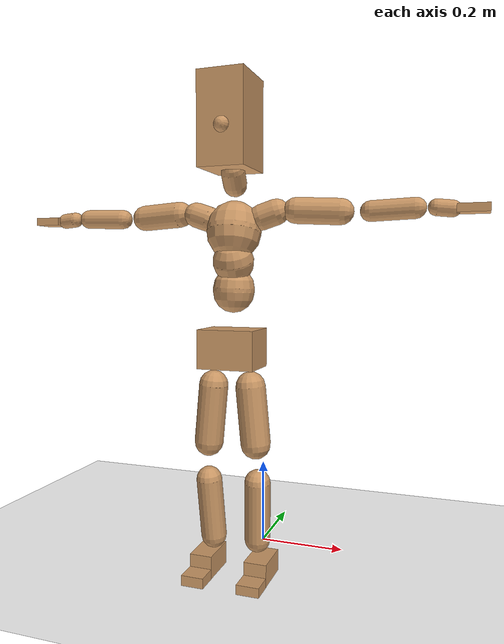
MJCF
<mujoco model="humanoid">
  <option integrator="implicitfast" />

  <visual>
    <global offwidth="1280" offheight="960" />
    <headlight active="1" ambient="0.34 0.34 0.34" diffuse="0.5 0.5 0.5" />
  </visual>

  <default>
    <joint damping="2" stiffness="2" armature="0.01" limited="true" solimplimit="0 .99 .01" />
    <geom condim="1" friction="0.7 0.005 0.0001" solimp=".99 .99 .003" solref="0.015 1" margin="0.001" rgba="0.8 0.6 .4 1" />
    <default class="smplcontact">
      <geom condim="3" friction="1. 0.005 0.0001" solref="0.015 1" solimp="0.98 0.98 0.001" priority="1" />
    </default>
    <default class="stiff_medium">
      <joint stiffness="10" />
    </default>
    <default class="stiff_medium_higher">
      <joint stiffness="50" />
    </default>
    <default class="stiff_high">
      <joint stiffness="100" />
    </default>
  </default>

  <asset>
    <texture type="skybox" builtin="gradient" rgb1="0.99 0.99 0.99" rgb2="0.608 0.828 0.892" width="100" />
    <texture builtin="flat" height="1278" mark="cross" markrgb="1 1 1" name="texgeom" random="0.01" rgb1="0.8 0.6 0.4" rgb2="0.8 0.6 0.4" type="cube" width="127" />
    <texture name="texplane" type="2d" builtin="checker" markrgb="1 1 1" rgb1="0.756 0.772 0.76" rgb2="0.6 0.6 0.6" width="100" height="100" />
    <material name="MatPlane" reflectance="0.5" texture="texplane" texrepeat="1 1" texuniform="true" />
    <material name="geom" texture="texgeom" texuniform="true" />
  </asset>

  <worldbody>
    <light name="tracking_light" pos="0 0 7" dir="0 0 -1" directional="true" cutoff="100" exponent="1" diffuse="1 1 1" specular="0.1 0.1 0.1" mode="trackcom" />
    <camera name="back" pos="0 3 2.4" xyaxes="-1 0 0 0 -1 2" mode="trackcom" />
    <camera name="side" pos="-3 0 2.4" xyaxes="0 -1 0 1 0 2" mode="trackcom" />
    <camera name="front_side" pos="-2.8 -2.8 0.8" xyaxes="0.5 -0.5 0 0.1 0.1 1" mode="trackcom" />
    <geom condim="3" name="floor" pos="0 0 0" rgba="1 1 1 1" size="100 100 .2" type="plane" material="MatPlane" />
    <body name="Pelvis" pos="-0.0018 -0.2233 0.522105" euler="90 0 0">
      <site name="Pelvis" size="0.01" />
      <freejoint name="Pelvis" />
      <geom type="box" pos="-0.0000 -0.0121 -0.0055" size="0.0622645 0.0420533 0.0483438" quat="1.0000 0.0000 0.0000 0.0000" density="3165.830099" name="Pelvis" />
      <body name="L_Hip" pos="0.0387885 -0.051011 -0.00379513">
        <joint name="L_Hip_x" type="hinge" pos="0 0 0" axis="1 0 0" stiffness="10" range="-160.0 22.92" class="stiff_medium" damping="15" />
        <joint name="L_Hip_y" type="hinge" pos="0 0 0" axis="0 1 0" stiffness="10" range="-70.0 70.0" class="stiff_medium" damping="10" />
        <joint name="L_Hip_z" type="hinge" pos="0 0 0" axis="0 0 1" stiffness="10" range="-28.65 90.0" class="stiff_medium" damping="10" />
        <geom type="capsule" density="2040.816327" fromto="0.00385094 -0.0418581 -0.000502297 0.0152921 -0.167544 -0.00200919" size="0.0324031" name="L_Hip" />
        <body name="L_Knee" pos="0.0191431 -0.209402 -0.00251148">
          <joint name="L_Knee_x" type="hinge" pos="0 0 0" axis="1 0 0" range="-5.16 171.89" damping="8" />
          <joint name="L_Knee_y" type="hinge" pos="0 0 0" axis="0 1 0" range="-4.58 6.88" damping="8" />
          <joint name="L_Knee_z" type="hinge" pos="0 0 0" axis="0 0 1" range="-6.88 4.58" damping="8" />
          <geom type="capsule" density="1234.567901" fromto="-0.00150689 -0.0444254 -0.00485554 -0.00608337 -0.177701 -0.0195338" size="0.0285042" name="L_Knee" />
          <body name="L_Ankle" pos="-0.00759026 -0.222127 -0.0243893">
            <joint name="L_Ankle_x" type="hinge" pos="0 0 0" axis="1 0 0" range="-45.84 45.84" class="stiff_medium" damping="6" />
            <joint name="L_Ankle_y" type="hinge" pos="0 0 0" axis="0 1 0" range="-74.48 22.92" class="stiff_medium" damping="3" />
            <joint name="L_Ankle_z" type="hinge" pos="0 0 0" axis="0 0 1" range="-4.58 4.58" class="stiff_medium" damping="6" />
            <geom type="box" pos="0.0130039 -0.0133388 0.0135062" size="0.0254483 0.0244472 0.0447848" quat="1.0000 0.0000 0.0000 0.0000" density="449.071558" name="L_Ankle" class="smplcontact" />
            <body name="L_Toe" pos="0.014734 -0.0311424 0.0665822">
              <joint name="L_Toe_x" type="hinge" pos="0 0 0" axis="1 0 0" range="-91.67 22.92" />
              <joint name="L_Toe_y" type="hinge" pos="0 0 0" axis="0 1 0" range="-4.58 4.58" />
              <joint name="L_Toe_z" type="hinge" pos="0 0 0" axis="0 0 1" range="-4.58 4.58" />
              <geom type="box" pos="-0.00167432 0.00306959 0.0138411" size="0.0251849 0.0105376 0.0261333" quat="1.0000 0.0000 0.0000 0.0000" density="423.206892" name="L_Toe" class="smplcontact" />
            </body>
          </body>
        </body>
      </body>
      <body name="R_Hip" pos="-0.0377839 -0.0505087 -0.00239986">
        <joint name="R_Hip_x" type="hinge" pos="0 0 0" axis="1 0 0" stiffness="10" range="-160.0 22.92" class="stiff_medium" damping="15" />
        <joint name="R_Hip_y" type="hinge" pos="0 0 0" axis="0 1 0" stiffness="10" range="-70.0 70.0" class="stiff_medium" damping="10" />
        <joint name="R_Hip_z" type="hinge" pos="0 0 0" axis="0 0 1" stiffness="10" range="-90.0 28.65" class="stiff_medium" damping="10" />
        <geom type="capsule" density="2040.816327" fromto="-0.00429743 -0.0426952 -0.00100459 -0.0170781 -0.170837 -0.00396256" size="0.0319289" name="R_Hip" />
        <body name="R_Knee" pos="-0.0213755 -0.213532 -0.00496716">
          <joint name="R_Knee_x" type="hinge" pos="0 0 0" axis="1 0 0" range="-5.16 171.89" damping="8" />
          <joint name="R_Knee_y" type="hinge" pos="0 0 0" axis="0 1 0" range="-6.88 4.58" damping="8" />
          <joint name="R_Knee_z" type="hinge" pos="0 0 0" axis="0 0 1" range="-4.58 6.88" damping="8" />
          <geom type="capsule" density="1234.567901" fromto="0.00178594 -0.0444812 -0.00474391 0.00703215 -0.177869 -0.018864" size="0.0285042" name="R_Knee" />
          <body name="R_Ankle" pos="0.0088181 -0.22235 -0.0236079">
            <joint name="R_Ankle_x" type="hinge" pos="0 0 0" axis="1 0 0" range="-45.84 45.84" class="stiff_medium" damping="6" />
            <joint name="R_Ankle_y" type="hinge" pos="0 0 0" axis="0 1 0" range="-22.92 74.48" class="stiff_medium" damping="3" />
            <joint name="R_Ankle_z" type="hinge" pos="0 0 0" axis="0 0 1" range="-4.58 4.58" class="stiff_medium" damping="6" />
            <geom type="box" pos="-0.0118319 -0.00971107 0.0142876" size="0.0254483 0.0251849 0.0455751" quat="1.0000 0.0000 0.0000 0.0000" density="434.700981" name="R_Ankle" class="smplcontact" />
            <body name="R_Toe" pos="-0.0141759 -0.026845 0.0688147">
              <joint name="R_Toe_x" type="hinge" pos="0 0 0" axis="1 0 0" range="-91.67 22.92" />
              <joint name="R_Toe_y" type="hinge" pos="0 0 0" axis="0 1 0" range="-4.58 4.58" />
              <joint name="R_Toe_z" type="hinge" pos="0 0 0" axis="0 0 1" range="-4.58 4.58" />
              <geom type="box" pos="0.00234405 0.00251148 0.012669" size="0.0252376 0.0113806 0.0259752" quat="1.0000 0.0000 0.0000 0.0000" density="407.384095" name="R_Toe" class="smplcontact" />
            </body>
          </body>
        </body>
      </body>
      <body name="Torso" pos="-0.00160274 0.0698797 -0.0171173">
        <joint name="Torso_x" type="hinge" pos="0 0 0" axis="1 0 0" range="-25.78 57.3" class="stiff_medium" damping="15" />
        <joint name="Torso_y" type="hinge" pos="0 0 0" axis="0 1 0" range="-57.3 57.3" class="stiff_high" damping="20" />
        <joint name="Torso_z" type="hinge" pos="0 0 0" axis="0 0 1" range="-34.38 34.38" class="stiff_high" damping="20" />
        <geom type="capsule" density="2040.816327" fromto="0.00160274 0.0389787 0.000320549 0.00192329 0.0476336 0.000384659" size="0.0447909" name="Torso" />
        <body name="Spine" pos="0.00352604 0.0866764 0.000705208">
          <joint name="Spine_x" type="hinge" pos="0 0 0" axis="1 0 0" stiffness="10" range="-25.78 57.3" class="stiff_medium" damping="15" />
          <joint name="Spine_y" type="hinge" pos="0 0 0" axis="0 1 0" stiffness="10" range="-57.3 57.3" class="stiff_high" damping="8" />
          <joint name="Spine_z" type="hinge" pos="0 0 0" axis="0 0 1" stiffness="20" range="-34.38 34.38" class="stiff_high" damping="12" />
          <geom type="capsule" density="2040.816327" fromto="0.000448768 0.0152581 0.00730851 0.000512878 0.0186559 0.00897537" size="0.0439754" name="Spine" />
          <body name="Chest" pos="0.000961647 0.0339141 0.0162839">
            <joint name="Chest_x" type="hinge" pos="0 0 0" axis="1 0 0" stiffness="10" range="-25.78 57.3" class="stiff_medium" damping="15" />
            <joint name="Chest_y" type="hinge" pos="0 0 0" axis="0 1 0" stiffness="10" range="-57.3 57.3" class="stiff_high" damping="8" />
            <joint name="Chest_z" type="hinge" pos="0 0 0" axis="0 0 1" stiffness="20" range="-34.38 34.38" class="stiff_high" damping="12" />
            <geom type="capsule" density="2040.816327" fromto="-0.000576988 0.0437229 -0.011091 -0.000641098 0.0534034 -0.0135913" size="0.0583621" name="Chest" />
            <body name="Neck" pos="-0.00179507 0.137131 -0.0275031">
              <joint name="Neck_x" type="hinge" pos="0 0 0" axis="1 0 0" range="-28.65 57.3" class="stiff_medium_higher" damping="10" />
              <joint name="Neck_y" type="hinge" pos="0 0 0" axis="0 1 0" range="-40.11 40.11" class="stiff_medium_higher" damping="10" />
              <joint name="Neck_z" type="hinge" pos="0 0 0" axis="0 0 1" range="-40.11 40.11" class="stiff_medium_higher" damping="10" />
              <geom type="capsule" density="1000" fromto="0.000641098 0.00833427 0.00660331 0.0026285 0.0333371 0.0263491" size="0.0253951" name="Neck" />
              <body name="Head" pos="0.0044675 0.0558437 0.0440736">
                <joint name="Head_x" type="hinge" pos="0 0 0" axis="1 0 0" range="-28.65 57.3" class="stiff_medium_higher" damping="2" />
                <joint name="Head_y" type="hinge" pos="0 0 0" axis="0 1 0" range="-40.11 40.11" class="stiff_medium_higher" damping="2" />
                <joint name="Head_z" type="hinge" pos="0 0 0" axis="0 0 1" range="-40.11 40.11" class="stiff_medium_higher" damping="2" />
                <geom type="box" pos="-0.00360836 0.0752601 -0.00996595" size="0.0504233 0.0960205 0.0632371" quat="1.0000 0.0000 0.0000 0.0000" density="1018.069894" name="Head" />
                <geom type="capsule" name="nose" size="0.0166413 0.00832067" pos="0 0.0601394 0.0429567" quat="1 0 0 0" mass="0" contype="0" conaffinity="0" />
              </body>
            </body>
            <body name="L_Thorax" pos="0.0465755 0.0719319 -0.0201551">
              <joint name="L_Thorax_x" type="hinge" pos="0 0 0" axis="1 0 0" range="-10.89 4.58" class="stiff_medium_higher" damping="20" />
              <joint name="L_Thorax_y" type="hinge" pos="0 0 0" axis="0 1 0" range="-28.65 17.19" class="stiff_medium_higher" damping="20" />
              <joint name="L_Thorax_z" type="hinge" pos="0 0 0" axis="0 0 1" range="-31.51 40.11" class="stiff_medium_higher" damping="20" />
              <geom type="capsule" density="1000" fromto="0.0107573 0.00360546 -0.00106391 0.0430291 0.0144218 -0.00419652" size="0.027622" name="L_Thorax" />
              <body name="L_Shoulder" pos="0.0537864 0.0180273 -0.00526043">
                <joint name="L_Shoulder_x" type="hinge" pos="0 0 0" axis="1 0 0" range="-97.4 97.4" class="stiff_medium" damping="6" />
                <joint name="L_Shoulder_y" type="hinge" pos="0 0 0" axis="0 1 0" range="-108.86 80.21" class="stiff_medium" damping="6" />
                <joint name="L_Shoulder_z" type="hinge" pos="0 0 0" axis="0 0 1" range="-97.4 85.94" class="stiff_medium" damping="6" />
                <geom type="capsule" density="1000" fromto="0.030676 -0.00153675 -0.00325082 0.122763 -0.0060288 -0.0130033" size="0.02741" name="L_Shoulder" />
                <body name="L_Elbow" pos="0.153439 -0.00756556 -0.0162541">
                  <joint name="L_Elbow_x" type="hinge" pos="0 0 0" axis="1 0 0" range="-17.19 4.58" damping="5" />
                  <joint name="L_Elbow_y" type="hinge" pos="0 0 0" axis="0 1 0" range="-180.0 17.19" damping="5" />
                  <joint name="L_Elbow_z" type="hinge" pos="0 0 0" axis="0 0 1" range="-100.84 4.58" damping="5" />
                  <geom type="capsule" density="1000" fromto="0.0294347 0.00106391 -0.000118212 0.117857 0.00425563 -0.000531953" size="0.021472" name="L_Elbow" />
                  <body name="L_Wrist" pos="0.147292 0.00531953 -0.000709271">
                    <joint name="L_Wrist_x" type="hinge" pos="0 0 0" axis="1 0 0" range="-180.0 22.92" />
                    <joint name="L_Wrist_y" type="hinge" pos="0 0 0" axis="0 1 0" range="-17.19 17.19" />
                    <joint name="L_Wrist_z" type="hinge" pos="0 0 0" axis="0 0 1" range="-22.92 22.92" />
                    <geom type="capsule" density="1000" fromto="0.00992979 -0.000945694 -0.00177318 0.0397192 -0.00384188 -0.00709271" size="0.0168595" name="L_Wrist" class="smplcontact" />
                    <body name="L_Hand" pos="0.049649 -0.00484668 -0.00880678">
                      <joint name="L_Hand_x" type="hinge" pos="0 0 0" axis="1 0 0" range="-17.19 17.19" />
                      <joint name="L_Hand_y" type="hinge" pos="0 0 0" axis="0 1 0" range="-51.57 51.57" />
                      <joint name="L_Hand_z" type="hinge" pos="0 0 0" axis="0 0 1" range="-91.67 91.67" />
                      <geom type="box" pos="0.0291392 0.000591059 -0.00342814" size="0.0310151 0.00837674 0.0285233" quat="1.0000 0.0000 0.0000 0.0000" density="400.552564" name="L_Hand" class="smplcontact" />
                    </body>
                  </body>
                </body>
              </body>
            </body>
            <body name="R_Thorax" pos="-0.0483486 0.0702178 -0.0228149">
              <joint name="R_Thorax_x" type="hinge" pos="0 0 0" axis="1 0 0" range="-10.89 4.58" class="stiff_medium_higher" damping="20" />
              <joint name="R_Thorax_y" type="hinge" pos="0 0 0" axis="0 1 0" range="-17.19 28.65" class="stiff_medium_higher" damping="20" />
              <joint name="R_Thorax_z" type="hinge" pos="0 0 0" axis="0 0 1" range="-40.11 31.51" class="stiff_medium_higher" damping="20" />
              <geom type="capsule" density="1000" fromto="-0.0113483 0.00384188 -0.00106391 -0.0453933 0.0153675 -0.00431473" size="0.0270919" name="R_Thorax" />
              <body name="R_Shoulder" pos="-0.0567417 0.0192685 -0.00537864">
                <joint name="R_Shoulder_x" type="hinge" pos="0 0 0" axis="1 0 0" range="-97.4 97.4" class="stiff_medium" damping="6" />
                <joint name="R_Shoulder_y" type="hinge" pos="0 0 0" axis="0 1 0" range="-80.21 108.86" class="stiff_medium" damping="6" />
                <joint name="R_Shoulder_z" type="hinge" pos="0 0 0" axis="0 0 1" range="-85.94 97.4" class="stiff_medium" damping="6" />
                <geom type="capsule" density="1000" fromto="-0.0299667 -0.00159586 -0.00254155 -0.119985 -0.00632433 -0.0101071" size="0.0281522" name="R_Shoulder" />
                <body name="R_Elbow" pos="-0.149952 -0.00786109 -0.0126487">
                  <joint name="R_Elbow_x" type="hinge" pos="0 0 0" axis="1 0 0" range="-17.19 4.58" damping="5" />
                  <joint name="R_Elbow_y" type="hinge" pos="0 0 0" axis="0 1 0" range="-17.19 180.0" damping="5" />
                  <joint name="R_Elbow_z" type="hinge" pos="0 0 0" axis="0 0 1" range="-4.58 100.84" damping="5" />
                  <geom type="capsule" density="1000" fromto="-0.0302031 0.000945694 -0.000650165 -0.120694 0.00366457 -0.00260066" size="0.0216311" name="R_Elbow" />
                  <body name="R_Wrist" pos="-0.150897 0.00461026 -0.00330993">
                    <joint name="R_Wrist_x" type="hinge" pos="0 0 0" axis="1 0 0" range="-180.0 22.92" />
                    <joint name="R_Wrist_y" type="hinge" pos="0 0 0" axis="0 1 0" range="-17.19 17.19" />
                    <joint name="R_Wrist_z" type="hinge" pos="0 0 0" axis="0 0 1" range="-22.92 22.92" />
                    <geom type="capsule" density="1000" fromto="-0.0099889 -0.000709271 -0.00124122 -0.0400147 -0.00289619 -0.00490579" size="0.0172836" name="R_Wrist" class="smplcontact" />
                    <body name="R_Hand" pos="-0.0500036 -0.00360546 -0.00608791">
                      <joint name="R_Hand_x" type="hinge" pos="0 0 0" axis="1 0 0" range="-17.19 17.19" />
                      <joint name="R_Hand_y" type="hinge" pos="0 0 0" axis="0 1 0" range="-51.57 51.57" />
                      <joint name="R_Hand_z" type="hinge" pos="0 0 0" axis="0 0 1" range="-91.67 91.67" />
                      <geom type="box" pos="-0.0273069 -0.000531953 -0.00466937" size="0.0301669 0.00869484 0.0289475" quat="1.0000 0.0000 0.0000 0.0000" density="403.679611" name="R_Hand" class="smplcontact" />
                    </body>
                  </body>
                </body>
              </body>
            </body>
          </body>
        </body>
      </body>
    </body>
  </worldbody>
  <actuator>
    <general name="L_Hip_x" joint="L_Hip_x" biastype="affine" gainprm="287.33006409732246" biasprm="-215.3247604770444 -180 -2.0" ctrllimited="true" ctrlrange="-1 1" forcerange="-360 360" />
    <general name="L_Hip_y" joint="L_Hip_y" biastype="affine" gainprm="219.9114857512855" biasprm="0.0 -180 -2.0" ctrllimited="true" ctrlrange="-1 1" forcerange="-360 360" />
    <general name="L_Hip_z" joint="L_Hip_z" biastype="affine" gainprm="186.3749841742145" biasprm="96.3683546488669 -180 -2.0" ctrllimited="true" ctrlrange="-1 1" forcerange="-360 360" />
    <general name="L_Knee_x" joint="L_Knee_x" biastype="affine" gainprm="278.10948965903646" biasprm="261.8988715665131 -180 -2.0" ctrllimited="true" ctrlrange="-1 1" forcerange="-360 360" />
    <general name="L_Knee_y" joint="L_Knee_y" biastype="affine" gainprm="18.001325905069514" biasprm="3.612831551628262 -180 -2.0" ctrllimited="true" ctrlrange="-1 1" forcerange="-360 360" />
    <general name="L_Knee_z" joint="L_Knee_z" biastype="affine" gainprm="18.001325905069514" biasprm="-3.612831551628262 -180 -2.0" ctrllimited="true" ctrlrange="-1 1" forcerange="-360 360" />
    <general name="L_Ankle_x" joint="L_Ankle_x" biastype="affine" gainprm="72.00530362027807" biasprm="0.0 -90 -2.0" ctrllimited="true" ctrlrange="-1 1" forcerange="-180 180" />
    <general name="L_Ankle_y" joint="L_Ankle_y" biastype="affine" gainprm="76.49778111491148" biasprm="-40.49512930477244 -90 -2.0" ctrllimited="true" ctrlrange="-1 1" forcerange="-180 180" />
    <general name="L_Ankle_z" joint="L_Ankle_z" biastype="affine" gainprm="7.1942471767206255" biasprm="0.0 -90 -2.0" ctrllimited="true" ctrlrange="-1 1" forcerange="-180 180" />
    <general name="L_Toe_x" joint="L_Toe_x" biastype="affine" gainprm="71.99902043497087" biasprm="-43.19689898685965 -72 -0.8" ctrllimited="true" ctrlrange="-1 1" forcerange="-144 144" />
    <general name="L_Toe_y" joint="L_Toe_y" biastype="affine" gainprm="5.755397741376501" biasprm="0.0 -72 -0.8" ctrllimited="true" ctrlrange="-1 1" forcerange="-144 144" />
    <general name="L_Toe_z" joint="L_Toe_z" biastype="affine" gainprm="5.755397741376501" biasprm="0.0 -72 -0.8" ctrllimited="true" ctrlrange="-1 1" forcerange="-144 144" />
    <general name="R_Hip_x" joint="R_Hip_x" biastype="affine" gainprm="287.33006409732246" biasprm="-215.3247604770444 -180 -2.0" ctrllimited="true" ctrlrange="-1 1" forcerange="-360 360" />
    <general name="R_Hip_y" joint="R_Hip_y" biastype="affine" gainprm="219.9114857512855" biasprm="0.0 -180 -2.0" ctrllimited="true" ctrlrange="-1 1" forcerange="-360 360" />
    <general name="R_Hip_z" joint="R_Hip_z" biastype="affine" gainprm="186.3749841742145" biasprm="-96.3683546488669 -180 -2.0" ctrllimited="true" ctrlrange="-1 1" forcerange="-360 360" />
    <general name="R_Knee_x" joint="R_Knee_x" biastype="affine" gainprm="278.10948965903646" biasprm="261.8988715665131 -180 -2.0" ctrllimited="true" ctrlrange="-1 1" forcerange="-360 360" />
    <general name="R_Knee_y" joint="R_Knee_y" biastype="affine" gainprm="18.001325905069514" biasprm="-3.612831551628262 -180 -2.0" ctrllimited="true" ctrlrange="-1 1" forcerange="-360 360" />
    <general name="R_Knee_z" joint="R_Knee_z" biastype="affine" gainprm="18.001325905069514" biasprm="3.612831551628262 -180 -2.0" ctrllimited="true" ctrlrange="-1 1" forcerange="-360 360" />
    <general name="R_Ankle_x" joint="R_Ankle_x" biastype="affine" gainprm="72.00530362027807" biasprm="0.0 -90 -2.0" ctrllimited="true" ctrlrange="-1 1" forcerange="-180 180" />
    <general name="R_Ankle_y" joint="R_Ankle_y" biastype="affine" gainprm="76.49778111491148" biasprm="40.49512930477244 -90 -2.0" ctrllimited="true" ctrlrange="-1 1" forcerange="-180 180" />
    <general name="R_Ankle_z" joint="R_Ankle_z" biastype="affine" gainprm="7.1942471767206255" biasprm="0.0 -90 -2.0" ctrllimited="true" ctrlrange="-1 1" forcerange="-180 180" />
    <general name="R_Toe_x" joint="R_Toe_x" biastype="affine" gainprm="71.99902043497087" biasprm="-43.19689898685965 -72 -0.8" ctrllimited="true" ctrlrange="-1 1" forcerange="-144 144" />
    <general name="R_Toe_y" joint="R_Toe_y" biastype="affine" gainprm="5.755397741376501" biasprm="0.0 -72 -0.8" ctrllimited="true" ctrlrange="-1 1" forcerange="-144 144" />
    <general name="R_Toe_z" joint="R_Toe_z" biastype="affine" gainprm="5.755397741376501" biasprm="0.0 -72 -0.8" ctrllimited="true" ctrlrange="-1 1" forcerange="-144 144" />
    <general name="Torso_x" joint="Torso_x" biastype="affine" gainprm="174.00234510682668" biasprm="66.0153336274335 -240 -4.0" ctrllimited="true" ctrlrange="-1 1" forcerange="-360 360" />
    <general name="Torso_y" joint="Torso_y" biastype="affine" gainprm="240.0176787342602" biasprm="0.0 -240 -4.0" ctrllimited="true" ctrlrange="-1 1" forcerange="-360 360" />
    <general name="Torso_z" joint="Torso_z" biastype="affine" gainprm="144.01060724055614" biasprm="0.0 -240 -4.0" ctrllimited="true" ctrlrange="-1 1" forcerange="-360 360" />
    <general name="Spine_x" joint="Spine_x" biastype="affine" gainprm="174.00234510682668" biasprm="66.0153336274335 -240 -4.0" ctrllimited="true" ctrlrange="-1 1" forcerange="-360 360" />
    <general name="Spine_y" joint="Spine_y" biastype="affine" gainprm="240.0176787342602" biasprm="0.0 -240 -4.0" ctrllimited="true" ctrlrange="-1 1" forcerange="-360 360" />
    <general name="Spine_z" joint="Spine_z" biastype="affine" gainprm="144.01060724055614" biasprm="0.0 -240 -4.0" ctrllimited="true" ctrlrange="-1 1" forcerange="-360 360" />
    <general name="Chest_x" joint="Chest_x" biastype="affine" gainprm="174.00234510682668" biasprm="66.0153336274335 -240 -4.0" ctrllimited="true" ctrlrange="-1 1" forcerange="-360 360" />
    <general name="Chest_y" joint="Chest_y" biastype="affine" gainprm="240.0176787342602" biasprm="0.0 -240 -4.0" ctrllimited="true" ctrlrange="-1 1" forcerange="-360 360" />
    <general name="Chest_z" joint="Chest_z" biastype="affine" gainprm="144.01060724055614" biasprm="0.0 -240 -4.0" ctrllimited="true" ctrlrange="-1 1" forcerange="-360 360" />
    <general name="Neck_x" joint="Neck_x" biastype="affine" gainprm="27.00198885760427" biasprm="9.000662952534757 -36 -0.8" ctrllimited="true" ctrlrange="-1 1" forcerange="-72 72" />
    <general name="Neck_y" joint="Neck_y" biastype="affine" gainprm="25.20185626709732" biasprm="0.0 -36 -0.8" ctrllimited="true" ctrlrange="-1 1" forcerange="-72 72" />
    <general name="Neck_z" joint="Neck_z" biastype="affine" gainprm="25.20185626709732" biasprm="0.0 -36 -0.8" ctrllimited="true" ctrlrange="-1 1" forcerange="-72 72" />
    <general name="Head_x" joint="Head_x" biastype="affine" gainprm="18.001325905069514" biasprm="6.000441968356505 -24 -0.8" ctrllimited="true" ctrlrange="-1 1" forcerange="-48 48" />
    <general name="Head_y" joint="Head_y" biastype="affine" gainprm="16.801237511398213" biasprm="0.0 -24 -0.8" ctrllimited="true" ctrlrange="-1 1" forcerange="-48 48" />
    <general name="Head_z" joint="Head_z" biastype="affine" gainprm="16.801237511398213" biasprm="0.0 -24 -0.8" ctrllimited="true" ctrlrange="-1 1" forcerange="-48 48" />
    <general name="L_Thorax_x" joint="L_Thorax_x" biastype="affine" gainprm="16.200146117011364" biasprm="-6.6078165480505335 -120 -1.6" ctrllimited="true" ctrlrange="-1 1" forcerange="-240 240" />
    <general name="L_Thorax_y" joint="L_Thorax_y" biastype="affine" gainprm="48.00353574685204" biasprm="-12.00088393671301 -120 -1.6" ctrllimited="true" ctrlrange="-1 1" forcerange="-240 240" />
    <general name="L_Thorax_z" joint="L_Thorax_z" biastype="affine" gainprm="75.00028861670033" biasprm="9.00589894029074 -120 -1.6" ctrllimited="true" ctrlrange="-1 1" forcerange="-240 240" />
    <general name="L_Shoulder_x" joint="L_Shoulder_x" biastype="affine" gainprm="81.5976331892389" biasprm="0.0 -48 -1.6" ctrllimited="true" ctrlrange="-1 1" forcerange="-96 96" />
    <general name="L_Shoulder_y" joint="L_Shoulder_y" biastype="affine" gainprm="79.19745640189629" biasprm="-12.00088393671301 -48 -1.6" ctrllimited="true" ctrlrange="-1 1" forcerange="-96 96" />
    <general name="L_Shoulder_z" joint="L_Shoulder_z" biastype="affine" gainprm="76.79727961455369" biasprm="-4.800353574685214 -48 -1.6" ctrllimited="true" ctrlrange="-1 1" forcerange="-96 96" />
    <general name="L_Elbow_x" joint="L_Elbow_x" biastype="affine" gainprm="13.67849441372996" biasprm="-7.923096672353461 -72 -0.8" ctrllimited="true" ctrlrange="-1 1" forcerange="-144 144" />
    <general name="L_Elbow_y" joint="L_Elbow_y" biastype="affine" gainprm="123.89813107227425" biasprm="-102.29653998619085 -72 -0.8" ctrllimited="true" ctrlrange="-1 1" forcerange="-144 144" />
    <general name="L_Elbow_z" joint="L_Elbow_z" biastype="affine" gainprm="66.23733950828719" biasprm="-60.4819417669107 -72 -0.8" ctrllimited="true" ctrlrange="-1 1" forcerange="-144 144" />
    <general name="L_Wrist_x" joint="L_Wrist_x" biastype="affine" gainprm="21.24973270888136" biasprm="-16.449379134196157 -12 -0.8" ctrllimited="true" ctrlrange="-1 1" forcerange="-24 24" />
    <general name="L_Wrist_y" joint="L_Wrist_y" biastype="affine" gainprm="3.6002651810139037" biasprm="0.0 -12 -0.8" ctrllimited="true" ctrlrange="-1 1" forcerange="-24 24" />
    <general name="L_Wrist_z" joint="L_Wrist_z" biastype="affine" gainprm="4.800353574685205" biasprm="0.0 -12 -0.8" ctrllimited="true" ctrlrange="-1 1" forcerange="-24 24" />
    <general name="L_Hand_x" joint="L_Hand_x" biastype="affine" gainprm="3.6002651810139037" biasprm="0.0 -12 -0.8" ctrllimited="true" ctrlrange="-1 1" forcerange="-24 24" />
    <general name="L_Hand_y" joint="L_Hand_y" biastype="affine" gainprm="10.800795543041708" biasprm="0.0 -12 -0.8" ctrllimited="true" ctrlrange="-1 1" forcerange="-24 24" />
    <general name="L_Hand_z" joint="L_Hand_z" biastype="affine" gainprm="19.199319903638422" biasprm="0.0 -12 -0.8" ctrllimited="true" ctrlrange="-1 1" forcerange="-24 24" />
    <general name="R_Thorax_x" joint="R_Thorax_x" biastype="affine" gainprm="16.200146117011364" biasprm="-6.6078165480505335 -120 -1.6" ctrllimited="true" ctrlrange="-1 1" forcerange="-240 240" />
    <general name="R_Thorax_y" joint="R_Thorax_y" biastype="affine" gainprm="48.00353574685204" biasprm="12.000883936713002 -120 -1.6" ctrllimited="true" ctrlrange="-1 1" forcerange="-240 240" />
    <general name="R_Thorax_z" joint="R_Thorax_z" biastype="affine" gainprm="75.00028861670033" biasprm="-9.00589894029074 -120 -1.6" ctrllimited="true" ctrlrange="-1 1" forcerange="-240 240" />
    <general name="R_Shoulder_x" joint="R_Shoulder_x" biastype="affine" gainprm="81.5976331892389" biasprm="0.0 -48 -1.6" ctrllimited="true" ctrlrange="-1 1" forcerange="-96 96" />
    <general name="R_Shoulder_y" joint="R_Shoulder_y" biastype="affine" gainprm="79.19745640189629" biasprm="12.00088393671301 -48 -1.6" ctrllimited="true" ctrlrange="-1 1" forcerange="-96 96" />
    <general name="R_Shoulder_z" joint="R_Shoulder_z" biastype="affine" gainprm="76.79727961455369" biasprm="4.800353574685204 -48 -1.6" ctrllimited="true" ctrlrange="-1 1" forcerange="-96 96" />
    <general name="R_Elbow_x" joint="R_Elbow_x" biastype="affine" gainprm="13.67849441372996" biasprm="-7.923096672353461 -72 -0.8" ctrllimited="true" ctrlrange="-1 1" forcerange="-144 144" />
    <general name="R_Elbow_y" joint="R_Elbow_y" biastype="affine" gainprm="123.89813107227425" biasprm="102.29653998619085 -72 -0.8" ctrllimited="true" ctrlrange="-1 1" forcerange="-144 144" />
    <general name="R_Elbow_z" joint="R_Elbow_z" biastype="affine" gainprm="66.23733950828719" biasprm="60.481941766910694 -72 -0.8" ctrllimited="true" ctrlrange="-1 1" forcerange="-144 144" />
    <general name="R_Wrist_x" joint="R_Wrist_x" biastype="affine" gainprm="21.24973270888136" biasprm="-16.449379134196157 -12 -0.8" ctrllimited="true" ctrlrange="-1 1" forcerange="-24 24" />
    <general name="R_Wrist_y" joint="R_Wrist_y" biastype="affine" gainprm="3.6002651810139037" biasprm="0.0 -12 -0.8" ctrllimited="true" ctrlrange="-1 1" forcerange="-24 24" />
    <general name="R_Wrist_z" joint="R_Wrist_z" biastype="affine" gainprm="4.800353574685205" biasprm="0.0 -12 -0.8" ctrllimited="true" ctrlrange="-1 1" forcerange="-24 24" />
    <general name="R_Hand_x" joint="R_Hand_x" biastype="affine" gainprm="3.6002651810139037" biasprm="0.0 -12 -0.8" ctrllimited="true" ctrlrange="-1 1" forcerange="-24 24" />
    <general name="R_Hand_y" joint="R_Hand_y" biastype="affine" gainprm="10.800795543041708" biasprm="0.0 -12 -0.8" ctrllimited="true" ctrlrange="-1 1" forcerange="-24 24" />
    <general name="R_Hand_z" joint="R_Hand_z" biastype="affine" gainprm="19.199319903638422" biasprm="0.0 -12 -0.8" ctrllimited="true" ctrlrange="-1 1" forcerange="-24 24" />
  </actuator>
  <contact>
    <exclude body1="Torso" body2="Chest" />
    <exclude body1="Head" body2="Chest" />
    <exclude body1="R_Knee" body2="R_Toe" />
    <exclude body1="R_Knee" body2="L_Ankle" />
    <exclude body1="R_Knee" body2="L_Toe" />
    <exclude body1="L_Knee" body2="L_Toe" />
    <exclude body1="L_Knee" body2="R_Ankle" />
    <exclude body1="L_Knee" body2="R_Toe" />
    <exclude body1="L_Shoulder" body2="Chest" />
    <exclude body1="R_Shoulder" body2="Chest" />
  </contact>
  <sensor>
    <framelinvel name="sensor_Pelvis_framelinvel" objtype="xbody" objname="Pelvis" />
    <framelinvel name="sensor_L_Hip_framelinvel" objtype="xbody" objname="L_Hip" />
    <framelinvel name="sensor_L_Knee_framelinvel" objtype="xbody" objname="L_Knee" />
    <framelinvel name="sensor_L_Ankle_framelinvel" objtype="xbody" objname="L_Ankle" />
    <framelinvel name="sensor_L_Toe_framelinvel" objtype="xbody" objname="L_Toe" />
    <framelinvel name="sensor_R_Hip_framelinvel" objtype="xbody" objname="R_Hip" />
    <framelinvel name="sensor_R_Knee_framelinvel" objtype="xbody" objname="R_Knee" />
    <framelinvel name="sensor_R_Ankle_framelinvel" objtype="xbody" objname="R_Ankle" />
    <framelinvel name="sensor_R_Toe_framelinvel" objtype="xbody" objname="R_Toe" />
    <framelinvel name="sensor_Torso_framelinvel" objtype="xbody" objname="Torso" />
    <framelinvel name="sensor_Spine_framelinvel" objtype="xbody" objname="Spine" />
    <framelinvel name="sensor_Chest_framelinvel" objtype="xbody" objname="Chest" />
    <framelinvel name="sensor_Neck_framelinvel" objtype="xbody" objname="Neck" />
    <framelinvel name="sensor_Head_framelinvel" objtype="xbody" objname="Head" />
    <framelinvel name="sensor_L_Thorax_framelinvel" objtype="xbody" objname="L_Thorax" />
    <framelinvel name="sensor_L_Shoulder_framelinvel" objtype="xbody" objname="L_Shoulder" />
    <framelinvel name="sensor_L_Elbow_framelinvel" objtype="xbody" objname="L_Elbow" />
    <framelinvel name="sensor_L_Wrist_framelinvel" objtype="xbody" objname="L_Wrist" />
    <framelinvel name="sensor_L_Hand_framelinvel" objtype="xbody" objname="L_Hand" />
    <framelinvel name="sensor_R_Thorax_framelinvel" objtype="xbody" objname="R_Thorax" />
    <framelinvel name="sensor_R_Shoulder_framelinvel" objtype="xbody" objname="R_Shoulder" />
    <framelinvel name="sensor_R_Elbow_framelinvel" objtype="xbody" objname="R_Elbow" />
    <framelinvel name="sensor_R_Wrist_framelinvel" objtype="xbody" objname="R_Wrist" />
    <framelinvel name="sensor_R_Hand_framelinvel" objtype="xbody" objname="R_Hand" />
    <frameangvel name="sensor_Pelvis_frameangvel" objtype="xbody" objname="Pelvis" />
    <frameangvel name="sensor_L_Hip_frameangvel" objtype="xbody" objname="L_Hip" />
    <frameangvel name="sensor_L_Knee_frameangvel" objtype="xbody" objname="L_Knee" />
    <frameangvel name="sensor_L_Ankle_frameangvel" objtype="xbody" objname="L_Ankle" />
    <frameangvel name="sensor_L_Toe_frameangvel" objtype="xbody" objname="L_Toe" />
    <frameangvel name="sensor_R_Hip_frameangvel" objtype="xbody" objname="R_Hip" />
    <frameangvel name="sensor_R_Knee_frameangvel" objtype="xbody" objname="R_Knee" />
    <frameangvel name="sensor_R_Ankle_frameangvel" objtype="xbody" objname="R_Ankle" />
    <frameangvel name="sensor_R_Toe_frameangvel" objtype="xbody" objname="R_Toe" />
    <frameangvel name="sensor_Torso_frameangvel" objtype="xbody" objname="Torso" />
    <frameangvel name="sensor_Spine_frameangvel" objtype="xbody" objname="Spine" />
    <frameangvel name="sensor_Chest_frameangvel" objtype="xbody" objname="Chest" />
    <frameangvel name="sensor_Neck_frameangvel" objtype="xbody" objname="Neck" />
    <frameangvel name="sensor_Head_frameangvel" objtype="xbody" objname="Head" />
    <frameangvel name="sensor_L_Thorax_frameangvel" objtype="xbody" objname="L_Thorax" />
    <frameangvel name="sensor_L_Shoulder_frameangvel" objtype="xbody" objname="L_Shoulder" />
    <frameangvel name="sensor_L_Elbow_frameangvel" objtype="xbody" objname="L_Elbow" />
    <frameangvel name="sensor_L_Wrist_frameangvel" objtype="xbody" objname="L_Wrist" />
    <frameangvel name="sensor_L_Hand_frameangvel" objtype="xbody" objname="L_Hand" />
    <frameangvel name="sensor_R_Thorax_frameangvel" objtype="xbody" objname="R_Thorax" />
    <frameangvel name="sensor_R_Shoulder_frameangvel" objtype="xbody" objname="R_Shoulder" />
    <frameangvel name="sensor_R_Elbow_frameangvel" objtype="xbody" objname="R_Elbow" />
    <frameangvel name="sensor_R_Wrist_frameangvel" objtype="xbody" objname="R_Wrist" />
    <frameangvel name="sensor_R_Hand_frameangvel" objtype="xbody" objname="R_Hand" />
    <subtreelinvel name="Chest_subtreelinvel" body="Chest" />
    <gyro name="Pelvis_gyro" site="Pelvis" />
  </sensor>
</mujoco>
